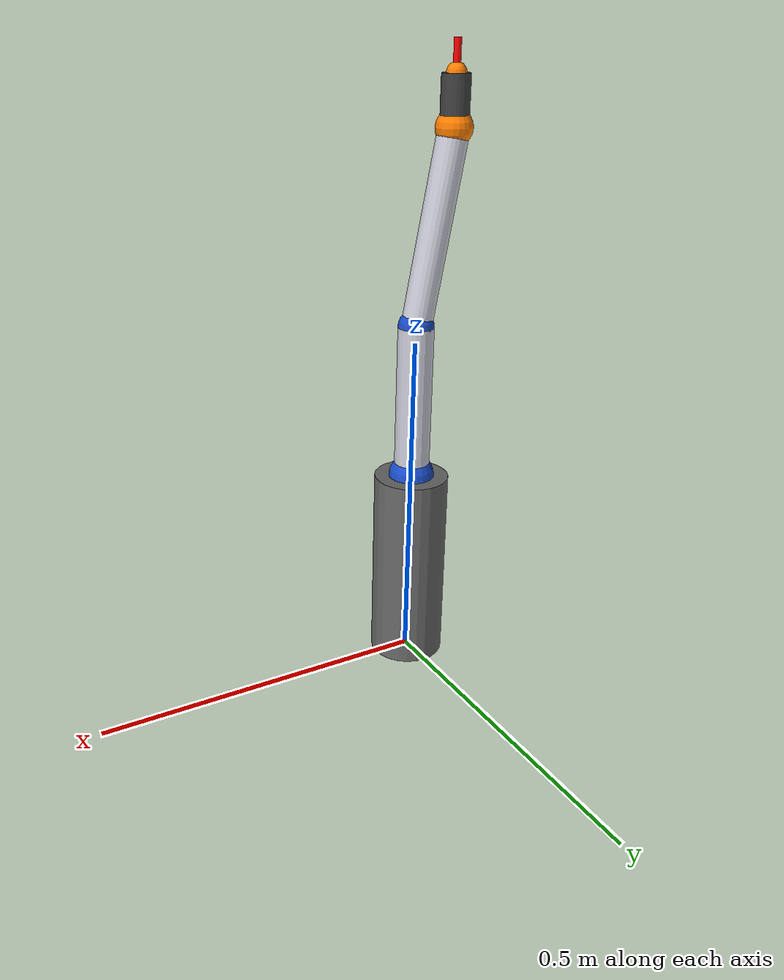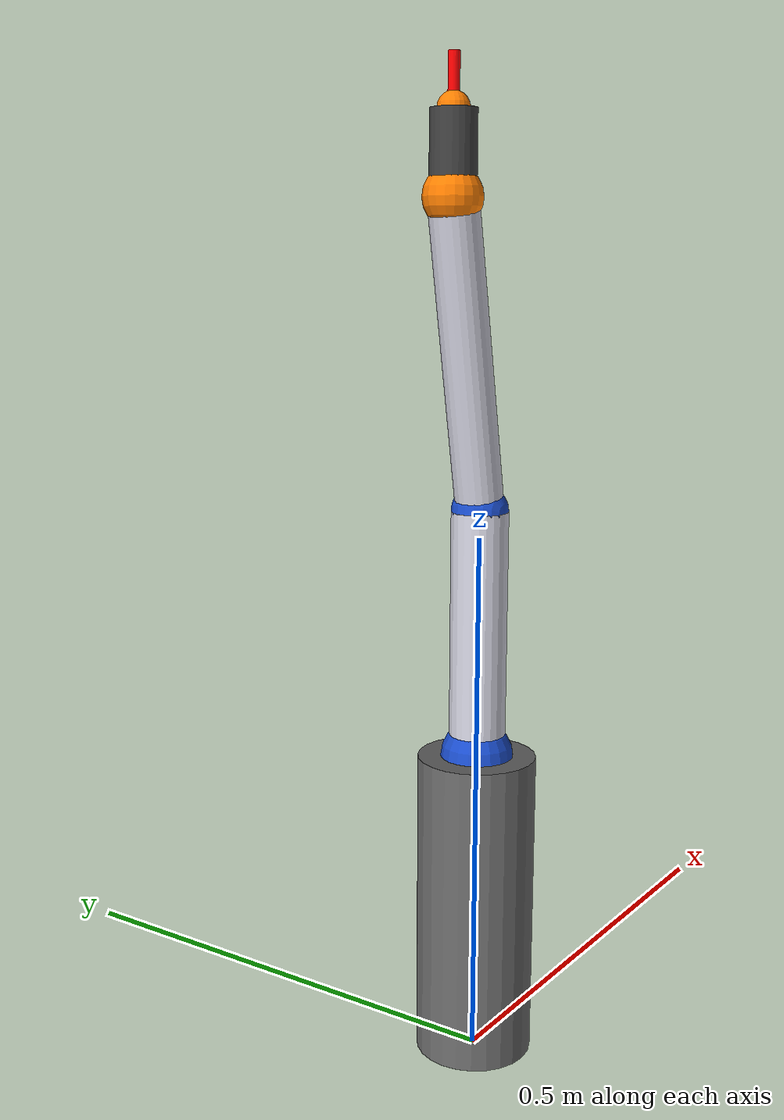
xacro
<?xml version="1.0" ?>
<robot name="rv2fr_robot" xmlns:xacro="http://ros.org/wiki/xacro">

  <xacro:property name="PI"  value="3.14159265358979"/>
  <xacro:property name="D0"  value="0.295"/>   <!-- d[0]: waist height -->
  <xacro:property name="A2"  value="0.230"/>   <!-- a[2]: upper arm length -->
  <xacro:property name="D5"  value="0.070"/>   <!-- d[5]: wrist-to-tool length -->

  <xacro:property name="LINK_R"    value="0.026"/>
  <xacro:property name="LINK_MASS" value="1.5"/>

  <!-- ── world ─────────────────────────────────────────────────── -->
  <link name="world"/>
  <joint name="world_to_base" type="fixed">
    <parent link="world"/>
    <child  link="base_link"/>
    <origin xyz="0 0 0" rpy="0 0 0"/>
  </joint>

  <!-- base: visual pillar up to shoulder height D0 -->
  <link name="base_link">
    <inertial>
      <origin xyz="0 0 ${D0/2}" rpy="0 0 0"/>
      <mass value="8.0"/>
      <inertia ixx="0.08" ixy="0" ixz="0" iyy="0.08" iyz="0" izz="0.04"/>
    </inertial>
    <visual>
      <origin xyz="0 0 ${D0/2}" rpy="0 0 0"/>
      <geometry><cylinder radius="0.055" length="${D0}"/></geometry>
      <material name="base_grey"><color rgba="0.4 0.4 0.4 1"/></material>
    </visual>
    <collision>
      <origin xyz="0 0 ${D0/2}" rpy="0 0 0"/>
      <geometry><cylinder radius="0.055" length="${D0}"/></geometry>
    </collision>
  </link>

  <!-- ── J0: waist ── xyz=(0,0,D0) ─────────────────────────────── -->
  <joint name="JOINT_0_ACT" type="revolute">
    <parent link="base_link"/>
    <child  link="link_1"/>
    <origin xyz="0 0 ${D0}" rpy="0 0 0"/>
    <axis xyz="0 0 1"/>
    <limit lower="${-PI}" upper="${PI}" effort="150" velocity="2.09"/>
    <dynamics damping="0.5" friction="0.2"/>
  </joint>

  <!-- link_1: waist hub  — J1 is colocated (a[1]=0), so no cylinder stub -->
  <link name="link_1">
    <inertial>
      <origin xyz="0 0 0" rpy="0 0 0"/>
      <mass value="1.0"/>
      <inertia ixx="0.005" ixy="0" ixz="0" iyy="0.005" iyz="0" izz="0.005"/>
    </inertial>
    <visual>
      <origin xyz="0 0 0" rpy="0 0 0"/>
      <geometry><sphere radius="${LINK_R * 1.3}"/></geometry>
      <material name="blue"><color rgba="0.1 0.3 0.8 1"/></material>
    </visual>
    <collision>
      <origin xyz="0 0 0" rpy="0 0 0"/>
      <geometry><sphere radius="${LINK_R * 1.3}"/></geometry>
    </collision>
  </link>

  <!-- ── J1: shoulder pitch ── xyz=(0,0,0) rpy=(-PI/4,-PI/2,-PI/4) ── -->
  <joint name="JOINT_1_ACT" type="revolute">
    <parent link="link_1"/>
    <child  link="link_2"/>
    <origin xyz="0 0 0" rpy="${-PI/4} ${-PI/2} ${-PI/4}"/>
    <axis xyz="0 0 1"/>
    <limit lower="${-PI/2}" upper="${PI/2}" effort="150" velocity="2.09"/>
    <dynamics damping="0.5" friction="0.2"/>
  </joint>

  <!-- link_2: upper arm from J1 to J2 (A2 along X of frame 1) -->
  <link name="link_2">
    <inertial>
      <origin xyz="${A2/2} 0 0" rpy="0 ${PI/2} 0"/>
      <mass value="${LINK_MASS}"/>
      <inertia ixx="0.015" ixy="0" ixz="0" iyy="0.015" iyz="0" izz="0.004"/>
    </inertial>
    <visual>
      <origin xyz="0 0 0" rpy="0 0 0"/>
      <geometry><sphere radius="${LINK_R * 1.1}"/></geometry>
      <material name="blue"><color rgba="0.1 0.3 0.8 1"/></material>
    </visual>
    <visual>
      <origin xyz="${A2/2} 0 0" rpy="0 ${PI/2} 0"/>
      <geometry><cylinder radius="${LINK_R}" length="${A2}"/></geometry>
      <material name="silver"><color rgba="0.8 0.8 0.85 1"/></material>
    </visual>
    <collision>
      <origin xyz="${A2/2} 0 0" rpy="0 ${PI/2} 0"/>
      <geometry><cylinder radius="${LINK_R}" length="${A2}"/></geometry>
    </collision>
  </link>

  <!-- ── J2: elbow ── xyz=(0.23,0,0) rpy=(0,0,PI/2) ────────────── -->
  <joint name="JOINT_2_ACT" type="revolute">
    <parent link="link_2"/>
    <child  link="link_3"/>
    <origin xyz="${A2} 0 0" rpy="0 0 ${PI/2}"/>
    <axis xyz="0 0 1"/>
    <limit lower="${-PI}" upper="${PI}" effort="100" velocity="2.61"/>
    <dynamics damping="0.3" friction="0.1"/>
  </joint>

  <!-- link_3: forearm from J2 to J3, offset=(-0.05,-0.27,0) in link_3's own frame -->
  <link name="link_3">
    <inertial>
      <origin xyz="-0.025 -0.135 0" rpy="${PI/2} -0.183111 -0.183111"/>
      <mass value="${LINK_MASS * 0.8}"/>
      <inertia ixx="0.012" ixy="0" ixz="0" iyy="0.012" iyz="0" izz="0.003"/>
    </inertial>
    <visual>
      <origin xyz="0 0 0" rpy="0 0 0"/>
      <geometry><sphere radius="${LINK_R * 1.0}"/></geometry>
      <material name="blue"><color rgba="0.1 0.3 0.8 1"/></material>
    </visual>
    <!-- forearm cylinder along the (-0.05,-0.27,0) direction to J3 -->
    <visual>
      <origin xyz="-0.025 -0.135 0" rpy="${PI/2} -0.183111 -0.183111"/>
      <geometry><cylinder radius="${LINK_R * 0.85}" length="0.2746"/></geometry>
      <material name="silver"><color rgba="0.8 0.8 0.85 1"/></material>
    </visual>
    <collision>
      <origin xyz="-0.025 -0.135 0" rpy="${PI/2} -0.183111 -0.183111"/>
      <geometry><cylinder radius="${LINK_R * 0.85}" length="0.2746"/></geometry>
    </collision>
  </link>

  <!-- ── J3: wrist yaw ── xyz=(-0.05,-0.27,0) rpy=(PI/2,0,0) ───── -->
  <joint name="JOINT_3_ACT" type="revolute">
    <parent link="link_3"/>
    <child  link="link_4"/>
    <origin xyz="-0.050 -0.270 0" rpy="${PI/2} 0 0"/>
    <axis xyz="0 0 1"/>
    <limit lower="${-PI}" upper="${PI}" effort="60" velocity="3.14"/>
    <dynamics damping="0.2" friction="0.1"/>
  </joint>

  <!-- link_4: wrist hub at J3/J4  — J4 is colocated (a[4]=0) -->
  <link name="link_4">
    <inertial>
      <origin xyz="0 0 0" rpy="0 0 0"/>
      <mass value="0.5"/>
      <inertia ixx="0.002" ixy="0" ixz="0" iyy="0.002" iyz="0" izz="0.001"/>
    </inertial>
    <visual>
      <origin xyz="0 0 0" rpy="0 0 0"/>
      <geometry><sphere radius="${LINK_R}"/></geometry>
      <material name="orange"><color rgba="1.0 0.5 0.0 1"/></material>
    </visual>
    <collision>
      <origin xyz="0 0 0" rpy="0 0 0"/>
      <geometry><sphere radius="${LINK_R}"/></geometry>
    </collision>
  </link>

  <!-- ── J4: wrist pitch ── xyz=(0,0,0) rpy=(-PI/2,0,0) ────────── -->
  <joint name="JOINT_4_ACT" type="revolute">
    <parent link="link_4"/>
    <child  link="link_5"/>
    <origin xyz="0 0 0" rpy="${-PI/2} 0 0"/>
    <axis xyz="0 0 1"/>
    <limit lower="${-PI * 0.75}" upper="${PI * 0.75}" effort="30" velocity="3.66"/>
    <dynamics damping="0.1" friction="0.05"/>
  </joint>

  <!-- link_5: wrist arm from J4 to J5 (D5 along -Y of frame 4) -->
  <link name="link_5">
    <inertial>
      <origin xyz="0 ${-D5/2} 0" rpy="${PI/2} 0 0"/>
      <mass value="0.3"/>
      <inertia ixx="0.001" ixy="0" ixz="0" iyy="0.001" iyz="0" izz="0.0005"/>
    </inertial>
    <visual>
      <origin xyz="0 ${-D5/2} 0" rpy="${PI/2} 0 0"/>
      <geometry><cylinder radius="0.020" length="${D5}"/></geometry>
      <material name="dark"><color rgba="0.25 0.25 0.25 1"/></material>
    </visual>
    <collision>
      <origin xyz="0 ${-D5/2} 0" rpy="${PI/2} 0 0"/>
      <geometry><cylinder radius="0.020" length="${D5}"/></geometry>
    </collision>
  </link>

  <!-- ── J5: wrist roll ── xyz=(0,-0.07,0) rpy=(PI/2,0,0) ──────── -->
  <joint name="JOINT_5_ACT" type="revolute">
    <parent link="link_5"/>
    <child  link="link_6"/>
    <origin xyz="0 ${-D5} 0" rpy="${PI/2} 0 0"/>
    <axis xyz="0 0 1"/>
    <limit lower="${-PI}" upper="${PI}" effort="20" velocity="5.23"/>
    <dynamics damping="0.05" friction="0.02"/>
  </joint>

  <!-- link_6: end-effector  — TCP is at the origin of this frame -->
  <link name="link_6">
    <inertial>
      <origin xyz="0 0 0" rpy="0 0 0"/>
      <mass value="0.10"/>
      <inertia ixx="0.0002" ixy="0" ixz="0" iyy="0.0002" iyz="0" izz="0.0001"/>
    </inertial>
    <visual>
      <origin xyz="0 0 0" rpy="0 0 0"/>
      <geometry><sphere radius="0.014"/></geometry>
      <material name="orange"><color rgba="1.0 0.5 0.0 1"/></material>
    </visual>
    <visual>
      <origin xyz="0 0 0.022" rpy="0 0 0"/>
      <geometry><cylinder radius="0.005" length="0.044"/></geometry>
      <material name="red"><color rgba="1.0 0.0 0.0 1"/></material>
    </visual>
    <collision>
      <origin xyz="0 0 0" rpy="0 0 0"/>
      <geometry><sphere radius="0.014"/></geometry>
    </collision>
  </link>

</robot>
